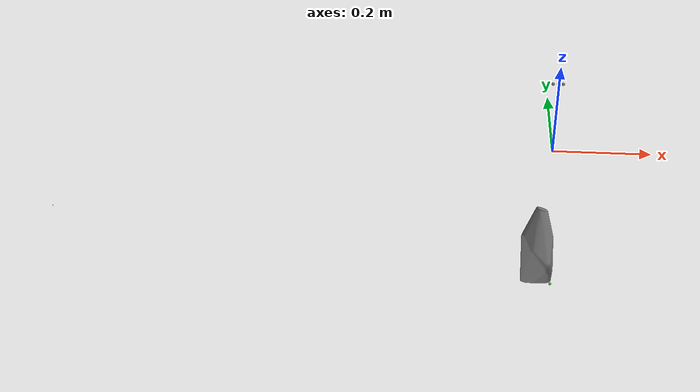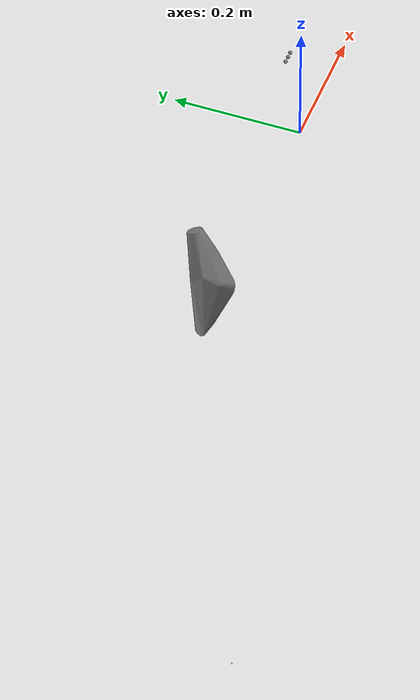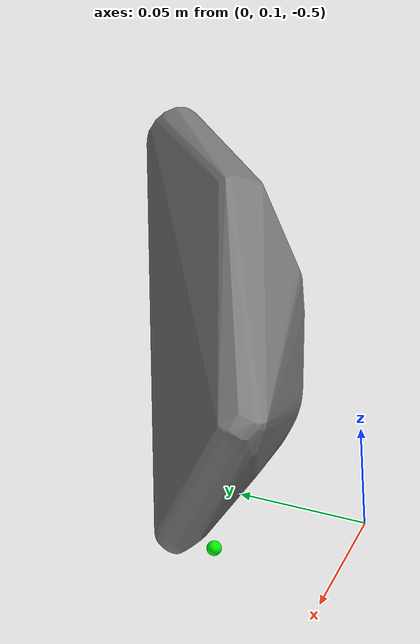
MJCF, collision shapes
<mujoco model="phantom">
  <compiler meshdir="meshes" />
  <asset>
    <mesh name="visual" file="AAA003/visual.stl" />
    <mesh name="hull_0" file="AAA003/hull_0.stl" />
  </asset>
  <worldbody>
    <body name="phantom">
      <geom name="visual" type="mesh" mesh="visual" contype="0" conaffinity="0" group="2" />
      <geom type="mesh" mesh="hull_0" />

      <!-- Centerline-based sites -->
      <site name="start" pos="0.044097 0.145742 -0.488647" size="0.003" rgba="0 1 0 1" />
      <site name="start_direction" pos="-0.966631 -0.255633 0.016651" size="0.001" rgba="0 1 0 0.5" />
      <site name="goal" pos="0.009994 0.174523 -0.292637" size="0.003" rgba="1 0 0 1" />
      <site name="bca" pos="0.0 0.02 0.15" size="0.003" />
      <site name="lcca" pos="-0.01 0.02 0.15" size="0.003" />
      <site name="lsa" pos="0.01 0.02 0.15" size="0.003" />
    </body>
  </worldbody>
</mujoco>
